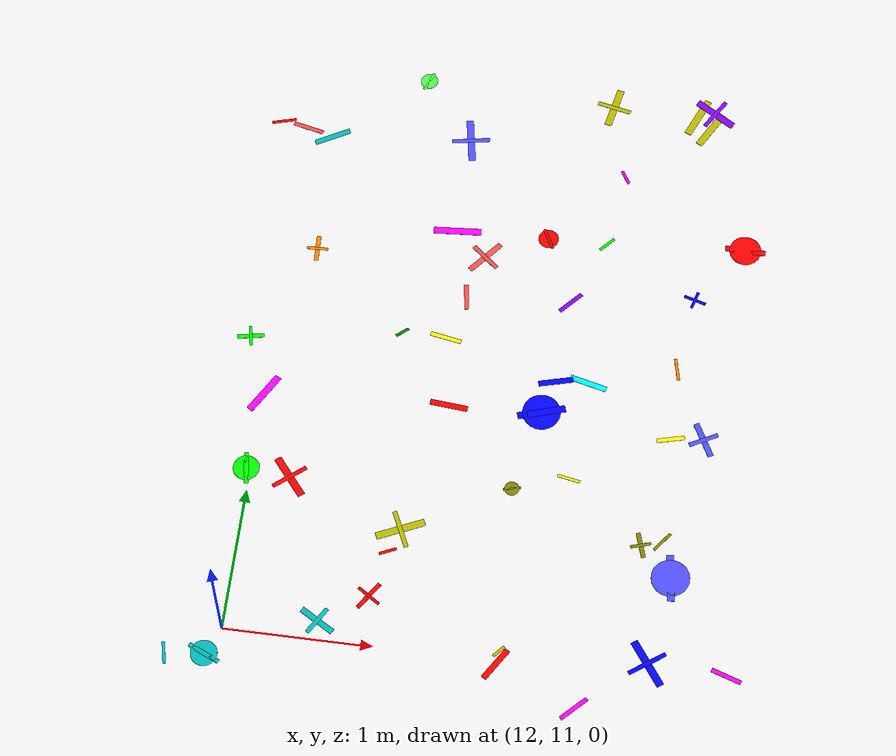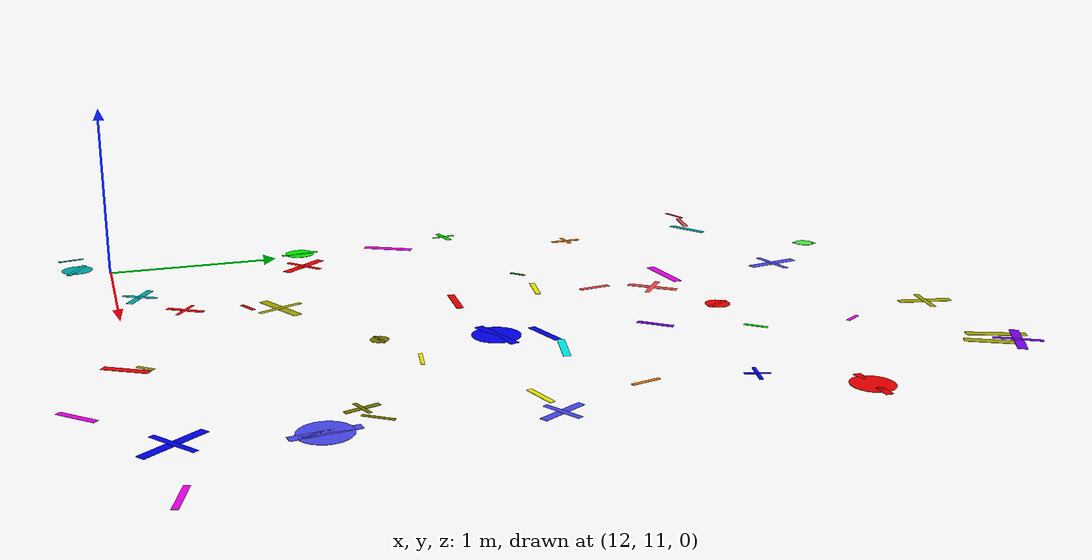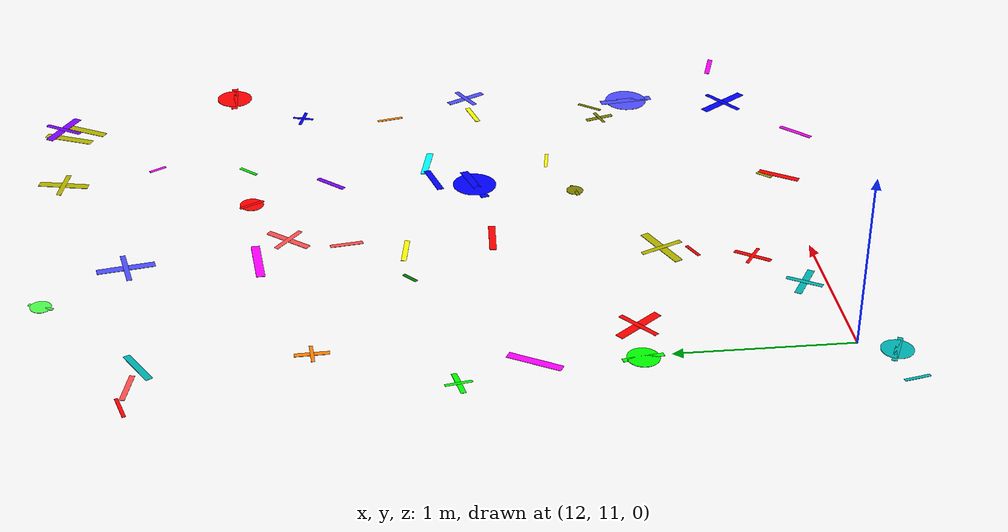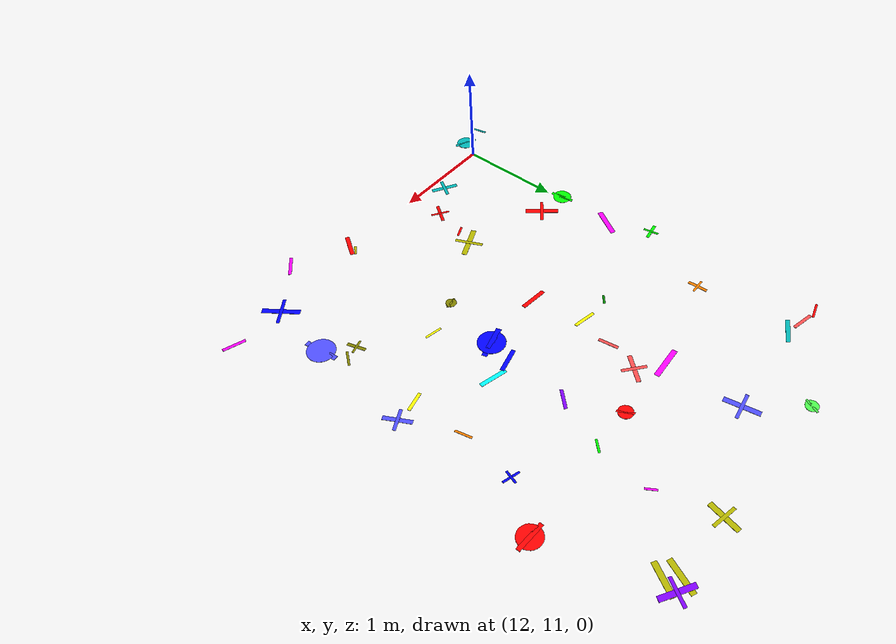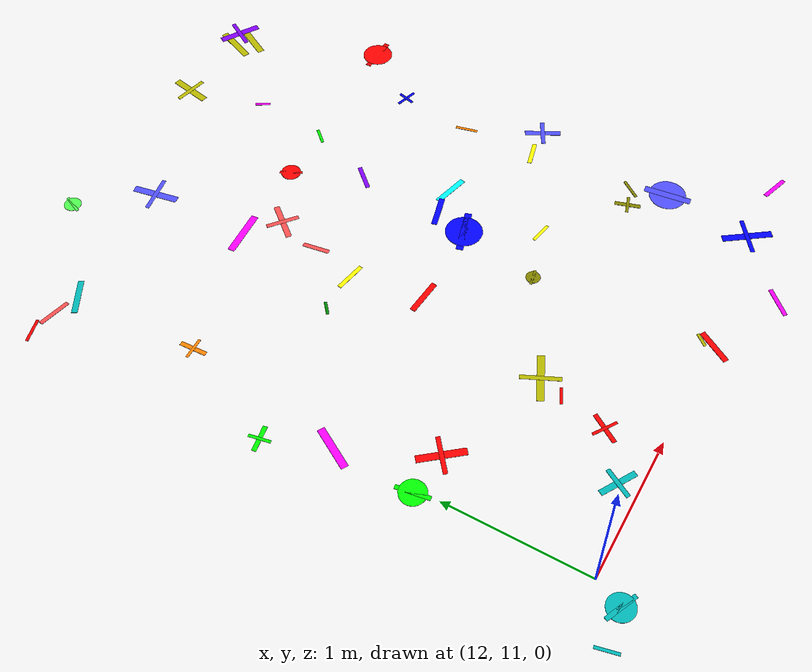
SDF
<sdf version="1.6">
 <world name="default">
  <model name="letter_K_2070">
   <static>true</static>
   <pose>11.65 10.78 0.006 0 0 4.928</pose>
   <link name="link">
    <visual name="visual">
     <geometry><box><size>0.15 0.02 0.002</size></box></geometry>
     <material>
      <ambient>0.0 0.7 0.7 1</ambient>
      <diffuse>0.0 0.7 0.7 1</diffuse>
      <specular>0.1 0.1 0.1 1</specular>
     </material>
    </visual>
   </link>
  </model>
  <model name="letter_G_2072">
   <static>true</static>
   <pose>11.91 10.81 0.010 0 0 2.710</pose>
   <link name="link">
    <visual name="visual">
     <geometry><box><size>0.23 0.03 0.002</size></box></geometry>
     <material>
      <ambient>0.0 0.7 0.7 1</ambient>
      <diffuse>0.0 0.7 0.7 1</diffuse>
      <specular>0.1 0.1 0.1 1</specular>
     </material>
    </visual>
    <visual name="visual2">
     <geometry><cylinder><radius>0.09</radius><length>0.002</length></cylinder></geometry>
     <material><ambient>0.0 0.7 0.7 1</ambient><diffuse>0.0 0.7 0.7 1</diffuse></material>
    </visual>
   </link>
  </model>
  <model name="letter_T_2073">
   <static>true</static>
   <pose>12.27 12.13 0.012 0 0 2.251</pose>
   <link name="link">
    <visual name="visual">
     <geometry><box><size>0.32 0.05 0.002</size></box></geometry>
     <material>
      <ambient>1.0 0.0 0.0 1</ambient>
      <diffuse>1.0 0.0 0.0 1</diffuse>
      <specular>0.1 0.1 0.1 1</specular>
     </material>
    </visual>
    <visual name="visual2">
     <pose>0 0 0.001 0 0 1.57</pose>
     <geometry><box><size>0.26 0.03 0.001</size></box></geometry>
     <material><ambient>1.0 0.0 0.0 1</ambient><diffuse>1.0 0.0 0.0 1</diffuse></material>
    </visual>
   </link>
  </model>
  <model name="letter_G_2075">
   <static>true</static>
   <pose>11.97 12.16 0.011 0 0 1.722</pose>
   <link name="link">
    <visual name="visual">
     <geometry><box><size>0.23 0.03 0.002</size></box></geometry>
     <material>
      <ambient>0.0 1.0 0.0 1</ambient>
      <diffuse>0.0 1.0 0.0 1</diffuse>
      <specular>0.1 0.1 0.1 1</specular>
     </material>
    </visual>
    <visual name="visual2">
     <geometry><cylinder><radius>0.09</radius><length>0.002</length></cylinder></geometry>
     <material><ambient>0.0 1.0 0.0 1</ambient><diffuse>0.0 1.0 0.0 1</diffuse></material>
    </visual>
   </link>
  </model>
  <model name="letter_S_2076">
   <static>true</static>
   <pose>12.00 12.73 0.004 0 0 4.183</pose>
   <link name="link">
    <visual name="visual">
     <geometry><box><size>0.31 0.05 0.002</size></box></geometry>
     <material>
      <ambient>1.0 0.0 1.0 1</ambient>
      <diffuse>1.0 0.0 1.0 1</diffuse>
      <specular>0.1 0.1 0.1 1</specular>
     </material>
    </visual>
   </link>
  </model>
  <model name="letter_H_2077">
   <static>true</static>
   <pose>11.84 13.15 0.008 0 0 3.321</pose>
   <link name="link">
    <visual name="visual">
     <geometry><box><size>0.18 0.03 0.002</size></box></geometry>
     <material>
      <ambient>0.0 1.0 0.0 1</ambient>
      <diffuse>0.0 1.0 0.0 1</diffuse>
      <specular>0.1 0.1 0.1 1</specular>
     </material>
    </visual>
    <visual name="visual2">
     <pose>0 0 0.001 0 0 1.57</pose>
     <geometry><box><size>0.15 0.02 0.001</size></box></geometry>
     <material><ambient>0.0 1.0 0.0 1</ambient><diffuse>0.0 1.0 0.0 1</diffuse></material>
    </visual>
   </link>
  </model>
  <model name="letter_E_2079">
   <static>true</static>
   <pose>12.19 13.89 0.004 0 0 4.754</pose>
   <link name="link">
    <visual name="visual">
     <geometry><box><size>0.19 0.03 0.002</size></box></geometry>
     <material>
      <ambient>1.0 0.5 0.0 1</ambient>
      <diffuse>1.0 0.5 0.0 1</diffuse>
      <specular>0.1 0.1 0.1 1</specular>
     </material>
    </visual>
    <visual name="visual2">
     <pose>0 0 0.001 0 0 1.57</pose>
     <geometry><box><size>0.15 0.02 0.001</size></box></geometry>
     <material><ambient>1.0 0.5 0.0 1</ambient><diffuse>1.0 0.5 0.0 1</diffuse></material>
    </visual>
   </link>
  </model>
  <model name="letter_Z_2080">
   <static>true</static>
   <pose>11.80 14.88 0.010 0 0 3.410</pose>
   <link name="link">
    <visual name="visual">
     <geometry><box><size>0.17 0.02 0.002</size></box></geometry>
     <material>
      <ambient>1.0 0.0 0.0 1</ambient>
      <diffuse>1.0 0.0 0.0 1</diffuse>
      <specular>0.1 0.1 0.1 1</specular>
     </material>
    </visual>
   </link>
  </model>
  <model name="letter_J_2081">
   <static>true</static>
   <pose>11.98 14.85 0.004 0 0 6.061</pose>
   <link name="link">
    <visual name="visual">
     <geometry><box><size>0.22 0.03 0.002</size></box></geometry>
     <material>
      <ambient>1.0 0.3 0.3 1</ambient>
      <diffuse>1.0 0.3 0.3 1</diffuse>
      <specular>0.1 0.1 0.1 1</specular>
     </material>
    </visual>
   </link>
  </model>
  <model name="letter_X_2082">
   <static>true</static>
   <pose>12.16 14.80 0.003 0 0 0.502</pose>
   <link name="link">
    <visual name="visual">
     <geometry><box><size>0.26 0.04 0.002</size></box></geometry>
     <material>
      <ambient>0.0 0.7 0.7 1</ambient>
      <diffuse>0.0 0.7 0.7 1</diffuse>
      <specular>0.1 0.1 0.1 1</specular>
     </material>
    </visual>
   </link>
  </model>
  <model name="letter_T_2151">
   <static>true</static>
   <pose>12.61 11.13 0.010 0 0 2.605</pose>
   <link name="link">
    <visual name="visual">
     <geometry><box><size>0.26 0.04 0.002</size></box></geometry>
     <material>
      <ambient>0.0 0.7 0.7 1</ambient>
      <diffuse>0.0 0.7 0.7 1</diffuse>
      <specular>0.1 0.1 0.1 1</specular>
     </material>
    </visual>
    <visual name="visual2">
     <pose>0 0 0.001 0 0 1.57</pose>
     <geometry><box><size>0.21 0.03 0.001</size></box></geometry>
     <material><ambient>0.0 0.7 0.7 1</ambient><diffuse>0.0 0.7 0.7 1</diffuse></material>
    </visual>
   </link>
  </model>
  <model name="letter_H_2152">
   <static>true</static>
   <pose>12.92 11.35 0.003 0 0 4.126</pose>
   <link name="link">
    <visual name="visual">
     <geometry><box><size>0.22 0.03 0.002</size></box></geometry>
     <material>
      <ambient>1.0 0.0 0.0 1</ambient>
      <diffuse>1.0 0.0 0.0 1</diffuse>
      <specular>0.1 0.1 0.1 1</specular>
     </material>
    </visual>
    <visual name="visual2">
     <pose>0 0 0.001 0 0 1.57</pose>
     <geometry><box><size>0.18 0.02 0.001</size></box></geometry>
     <material><ambient>1.0 0.0 0.0 1</ambient><diffuse>1.0 0.0 0.0 1</diffuse></material>
    </visual>
   </link>
  </model>
  <model name="letter_E_2153">
   <static>true</static>
   <pose>13.06 11.85 0.005 0 0 3.571</pose>
   <link name="link">
    <visual name="visual">
     <geometry><box><size>0.34 0.05 0.002</size></box></geometry>
     <material>
      <ambient>0.7 0.7 0.0 1</ambient>
      <diffuse>0.7 0.7 0.0 1</diffuse>
      <specular>0.1 0.1 0.1 1</specular>
     </material>
    </visual>
    <visual name="visual2">
     <pose>0 0 0.001 0 0 1.57</pose>
     <geometry><box><size>0.27 0.03 0.001</size></box></geometry>
     <material><ambient>0.7 0.7 0.0 1</ambient><diffuse>0.7 0.7 0.0 1</diffuse></material>
    </visual>
   </link>
  </model>
  <model name="letter_S_2154">
   <static>true</static>
   <pose>13.00 11.68 0.009 0 0 3.574</pose>
   <link name="link">
    <visual name="visual">
     <geometry><box><size>0.12 0.02 0.002</size></box></geometry>
     <material>
      <ambient>1.0 0.0 0.0 1</ambient>
      <diffuse>1.0 0.0 0.0 1</diffuse>
      <specular>0.1 0.1 0.1 1</specular>
     </material>
    </visual>
   </link>
  </model>
  <model name="letter_W_2155">
   <static>true</static>
   <pose>13.26 12.80 0.007 0 0 6.194</pose>
   <link name="link">
    <visual name="visual">
     <geometry><box><size>0.26 0.04 0.002</size></box></geometry>
     <material>
      <ambient>1.0 0.0 0.0 1</ambient>
      <diffuse>1.0 0.0 0.0 1</diffuse>
      <specular>0.1 0.1 0.1 1</specular>
     </material>
    </visual>
   </link>
  </model>
  <model name="letter_K_2156">
   <static>true</static>
   <pose>12.87 13.31 0.013 0 0 3.852</pose>
   <link name="link">
    <visual name="visual">
     <geometry><box><size>0.10 0.02 0.002</size></box></geometry>
     <material>
      <ambient>0.0 0.5 0.0 1</ambient>
      <diffuse>0.0 0.5 0.0 1</diffuse>
      <specular>0.1 0.1 0.1 1</specular>
     </material>
    </visual>
   </link>
  </model>
  <model name="letter_V_2157">
   <static>true</static>
   <pose>13.17 13.31 0.008 0 0 6.100</pose>
   <link name="link">
    <visual name="visual">
     <geometry><box><size>0.22 0.03 0.002</size></box></geometry>
     <material>
      <ambient>1.0 1.0 0.0 1</ambient>
      <diffuse>1.0 1.0 0.0 1</diffuse>
      <specular>0.1 0.1 0.1 1</specular>
     </material>
    </visual>
   </link>
  </model>
  <model name="letter_T_2158">
   <static>true</static>
   <pose>13.36 13.97 0.006 0 0 0.874</pose>
   <link name="link">
    <visual name="visual">
     <geometry><box><size>0.29 0.04 0.002</size></box></geometry>
     <material>
      <ambient>1.0 0.3 0.3 1</ambient>
      <diffuse>1.0 0.3 0.3 1</diffuse>
      <specular>0.1 0.1 0.1 1</specular>
     </material>
    </visual>
    <visual name="visual2">
     <pose>0 0 0.001 0 0 1.57</pose>
     <geometry><box><size>0.23 0.03 0.001</size></box></geometry>
     <material><ambient>1.0 0.3 0.3 1</ambient><diffuse>1.0 0.3 0.3 1</diffuse></material>
    </visual>
   </link>
  </model>
  <model name="letter_M_2159">
   <static>true</static>
   <pose>13.14 14.15 0.008 0 0 3.214</pose>
   <link name="link">
    <visual name="visual">
     <geometry><box><size>0.33 0.05 0.002</size></box></geometry>
     <material>
      <ambient>1.0 0.0 1.0 1</ambient>
      <diffuse>1.0 0.0 1.0 1</diffuse>
      <specular>0.1 0.1 0.1 1</specular>
     </material>
    </visual>
   </link>
  </model>
  <model name="letter_R_2160">
   <static>true</static>
   <pose>13.27 13.64 0.010 0 0 4.855</pose>
   <link name="link">
    <visual name="visual">
     <geometry><box><size>0.19 0.03 0.002</size></box></geometry>
     <material>
      <ambient>1.0 0.3 0.3 1</ambient>
      <diffuse>1.0 0.3 0.3 1</diffuse>
      <specular>0.1 0.1 0.1 1</specular>
     </material>
    </visual>
   </link>
  </model>
  <model name="letter_I_2161">
   <static>true</static>
   <pose>13.14 14.89 0.010 0 0 4.885</pose>
   <link name="link">
    <visual name="visual">
     <geometry><box><size>0.33 0.05 0.002</size></box></geometry>
     <material>
      <ambient>0.3 0.3 1.0 1</ambient>
      <diffuse>0.3 0.3 1.0 1</diffuse>
      <specular>0.1 0.1 0.1 1</specular>
     </material>
    </visual>
    <visual name="visual2">
     <pose>0 0 0.001 0 0 1.57</pose>
     <geometry><box><size>0.27 0.03 0.001</size></box></geometry>
     <material><ambient>0.3 0.3 1.0 1</ambient><diffuse>0.3 0.3 1.0 1</diffuse></material>
    </visual>
   </link>
  </model>
  <model name="letter_Q_2162">
   <static>true</static>
   <pose>12.78 15.34 0.013 0 0 4.293</pose>
   <link name="link">
    <visual name="visual">
     <geometry><box><size>0.15 0.02 0.002</size></box></geometry>
     <material>
      <ambient>0.3 1.0 0.3 1</ambient>
      <diffuse>0.3 1.0 0.3 1</diffuse>
      <specular>0.1 0.1 0.1 1</specular>
     </material>
    </visual>
    <visual name="visual2">
     <geometry><cylinder><radius>0.06</radius><length>0.002</length></cylinder></geometry>
     <material><ambient>0.3 1.0 0.3 1</ambient><diffuse>0.3 1.0 0.3 1</diffuse></material>
    </visual>
   </link>
  </model>
  <model name="letter_Z_2227">
   <static>true</static>
   <pose>14.35 10.74 0.004 0 0 0.787</pose>
   <link name="link">
    <visual name="visual">
     <geometry><box><size>0.22 0.03 0.002</size></box></geometry>
     <material>
      <ambient>1.0 0.0 1.0 1</ambient>
      <diffuse>1.0 0.0 1.0 1</diffuse>
      <specular>0.1 0.1 0.1 1</specular>
     </material>
    </visual>
   </link>
  </model>
  <model name="letter_P_2228">
   <static>true</static>
   <pose>13.82 11.07 0.009 0 0 0.850</pose>
   <link name="link">
    <visual name="visual">
     <geometry><box><size>0.10 0.02 0.002</size></box></geometry>
     <material>
      <ambient>0.7 0.7 0.0 1</ambient>
      <diffuse>0.7 0.7 0.0 1</diffuse>
      <specular>0.1 0.1 0.1 1</specular>
     </material>
    </visual>
   </link>
  </model>
  <model name="letter_P_2229">
   <static>true</static>
   <pose>13.81 10.98 0.006 0 0 1.010</pose>
   <link name="link">
    <visual name="visual">
     <geometry><box><size>0.25 0.04 0.002</size></box></geometry>
     <material>
      <ambient>1.0 0.0 0.0 1</ambient>
      <diffuse>1.0 0.0 0.0 1</diffuse>
      <specular>0.1 0.1 0.1 1</specular>
     </material>
    </visual>
   </link>
  </model>
  <model name="letter_C_2230">
   <static>true</static>
   <pose>13.76 12.24 0.005 0 0 3.343</pose>
   <link name="link">
    <visual name="visual">
     <geometry><box><size>0.12 0.02 0.002</size></box></geometry>
     <material>
      <ambient>0.5 0.5 0.0 1</ambient>
      <diffuse>0.5 0.5 0.0 1</diffuse>
      <specular>0.1 0.1 0.1 1</specular>
     </material>
    </visual>
    <visual name="visual2">
     <geometry><cylinder><radius>0.05</radius><length>0.002</length></cylinder></geometry>
     <material><ambient>0.5 0.5 0.0 1</ambient><diffuse>0.5 0.5 0.0 1</diffuse></material>
    </visual>
   </link>
  </model>
  <model name="letter_X_2231">
   <static>true</static>
   <pose>14.13 12.36 0.011 0 0 6.097</pose>
   <link name="link">
    <visual name="visual">
     <geometry><box><size>0.16 0.02 0.002</size></box></geometry>
     <material>
      <ambient>1.0 1.0 0.0 1</ambient>
      <diffuse>1.0 1.0 0.0 1</diffuse>
      <specular>0.1 0.1 0.1 1</specular>
     </material>
    </visual>
   </link>
  </model>
  <model name="letter_P_2232">
   <static>true</static>
   <pose>14.18 13.09 0.003 0 0 2.898</pose>
   <link name="link">
    <visual name="visual">
     <geometry><box><size>0.26 0.04 0.002</size></box></geometry>
     <material>
      <ambient>0.0 1.0 1.0 1</ambient>
      <diffuse>0.0 1.0 1.0 1</diffuse>
      <specular>0.1 0.1 0.1 1</specular>
     </material>
    </visual>
   </link>
  </model>
  <model name="letter_O_2233">
   <static>true</static>
   <pose>13.89 12.83 0.006 0 0 3.432</pose>
   <link name="link">
    <visual name="visual">
     <geometry><box><size>0.33 0.05 0.002</size></box></geometry>
     <material>
      <ambient>0.0 0.0 1.0 1</ambient>
      <diffuse>0.0 0.0 1.0 1</diffuse>
      <specular>0.1 0.1 0.1 1</specular>
     </material>
    </visual>
    <visual name="visual2">
     <geometry><cylinder><radius>0.13</radius><length>0.002</length></cylinder></geometry>
     <material><ambient>0.0 0.0 1.0 1</ambient><diffuse>0.0 0.0 1.0 1</diffuse></material>
    </visual>
   </link>
  </model>
  <model name="letter_B_2234">
   <static>true</static>
   <pose>13.96 13.07 0.011 0 0 0.256</pose>
   <link name="link">
    <visual name="visual">
     <geometry><box><size>0.24 0.04 0.002</size></box></geometry>
     <material>
      <ambient>0.0 0.0 1.0 1</ambient>
      <diffuse>0.0 0.0 1.0 1</diffuse>
      <specular>0.1 0.1 0.1 1</specular>
     </material>
    </visual>
   </link>
  </model>
  <model name="letter_U_2235">
   <static>true</static>
   <pose>13.99 13.69 0.005 0 0 0.828</pose>
   <link name="link">
    <visual name="visual">
     <geometry><box><size>0.20 0.03 0.002</size></box></geometry>
     <material>
      <ambient>0.5 0.0 1.0 1</ambient>
      <diffuse>0.5 0.0 1.0 1</diffuse>
      <specular>0.1 0.1 0.1 1</specular>
     </material>
    </visual>
   </link>
  </model>
  <model name="letter_D_2236">
   <static>true</static>
   <pose>14.19 14.18 0.005 0 0 0.820</pose>
   <link name="link">
    <visual name="visual">
     <geometry><box><size>0.13 0.02 0.002</size></box></geometry>
     <material>
      <ambient>0.0 1.0 0.0 1</ambient>
      <diffuse>0.0 1.0 0.0 1</diffuse>
      <specular>0.1 0.1 0.1 1</specular>
     </material>
    </visual>
   </link>
  </model>
  <model name="letter_G_2237">
   <static>true</static>
   <pose>13.78 14.17 0.008 0 0 5.196</pose>
   <link name="link">
    <visual name="visual">
     <geometry><box><size>0.16 0.02 0.002</size></box></geometry>
     <material>
      <ambient>1.0 0.0 0.0 1</ambient>
      <diffuse>1.0 0.0 0.0 1</diffuse>
      <specular>0.1 0.1 0.1 1</specular>
     </material>
    </visual>
    <visual name="visual2">
     <geometry><cylinder><radius>0.07</radius><length>0.002</length></cylinder></geometry>
     <material><ambient>1.0 0.0 0.0 1</ambient><diffuse>1.0 0.0 0.0 1</diffuse></material>
    </visual>
   </link>
  </model>
  <model name="letter_Y_2238">
   <static>true</static>
   <pose>14.26 14.73 0.012 0 0 5.254</pose>
   <link name="link">
    <visual name="visual">
     <geometry><box><size>0.11 0.02 0.002</size></box></geometry>
     <material>
      <ambient>1.0 0.0 1.0 1</ambient>
      <diffuse>1.0 0.0 1.0 1</diffuse>
      <specular>0.1 0.1 0.1 1</specular>
     </material>
    </visual>
   </link>
  </model>
  <model name="letter_I_2239">
   <static>true</static>
   <pose>14.12 15.29 0.013 0 0 4.503</pose>
   <link name="link">
    <visual name="visual">
     <geometry><box><size>0.30 0.05 0.002</size></box></geometry>
     <material>
      <ambient>0.7 0.7 0.0 1</ambient>
      <diffuse>0.7 0.7 0.0 1</diffuse>
      <specular>0.1 0.1 0.1 1</specular>
     </material>
    </visual>
    <visual name="visual2">
     <pose>0 0 0.001 0 0 1.57</pose>
     <geometry><box><size>0.24 0.03 0.001</size></box></geometry>
     <material><ambient>0.7 0.7 0.0 1</ambient><diffuse>0.7 0.7 0.0 1</diffuse></material>
    </visual>
   </link>
  </model>
  <model name="letter_A_2308">
   <static>true</static>
   <pose>14.79 11.11 0.007 0 0 2.193</pose>
   <link name="link">
    <visual name="visual">
     <geometry><box><size>0.35 0.05 0.002</size></box></geometry>
     <material>
      <ambient>0.0 0.0 1.0 1</ambient>
      <diffuse>0.0 0.0 1.0 1</diffuse>
      <specular>0.1 0.1 0.1 1</specular>
     </material>
    </visual>
    <visual name="visual2">
     <pose>0 0 0.001 0 0 1.57</pose>
     <geometry><box><size>0.28 0.03 0.001</size></box></geometry>
     <material><ambient>0.0 0.0 1.0 1</ambient><diffuse>0.0 0.0 1.0 1</diffuse></material>
    </visual>
   </link>
  </model>
  <model name="letter_X_2309">
   <static>true</static>
   <pose>15.31 11.09 0.005 0 0 2.821</pose>
   <link name="link">
    <visual name="visual">
     <geometry><box><size>0.21 0.03 0.002</size></box></geometry>
     <material>
      <ambient>1.0 0.0 1.0 1</ambient>
      <diffuse>1.0 0.0 1.0 1</diffuse>
      <specular>0.1 0.1 0.1 1</specular>
     </material>
    </visual>
   </link>
  </model>
  <model name="letter_O_2310">
   <static>true</static>
   <pose>14.88 11.73 0.007 0 0 4.828</pose>
   <link name="link">
    <visual name="visual">
     <geometry><box><size>0.33 0.05 0.002</size></box></geometry>
     <material>
      <ambient>0.3 0.3 1.0 1</ambient>
      <diffuse>0.3 0.3 1.0 1</diffuse>
      <specular>0.1 0.1 0.1 1</specular>
     </material>
    </visual>
    <visual name="visual2">
     <geometry><cylinder><radius>0.13</radius><length>0.002</length></cylinder></geometry>
     <material><ambient>0.3 0.3 1.0 1</ambient><diffuse>0.3 0.3 1.0 1</diffuse></material>
    </visual>
   </link>
  </model>
  <model name="letter_E_2311">
   <static>true</static>
   <pose>14.66 11.94 0.007 0 0 5.013</pose>
   <link name="link">
    <visual name="visual">
     <geometry><box><size>0.18 0.03 0.002</size></box></geometry>
     <material>
      <ambient>0.5 0.5 0.0 1</ambient>
      <diffuse>0.5 0.5 0.0 1</diffuse>
      <specular>0.1 0.1 0.1 1</specular>
     </material>
    </visual>
    <visual name="visual2">
     <pose>0 0 0.001 0 0 1.57</pose>
     <geometry><box><size>0.14 0.02 0.001</size></box></geometry>
     <material><ambient>0.5 0.5 0.0 1</ambient><diffuse>0.5 0.5 0.0 1</diffuse></material>
    </visual>
   </link>
  </model>
  <model name="letter_J_2312">
   <static>true</static>
   <pose>14.80 11.98 0.013 0 0 0.921</pose>
   <link name="link">
    <visual name="visual">
     <geometry><box><size>0.16 0.02 0.002</size></box></geometry>
     <material>
      <ambient>0.5 0.5 0.0 1</ambient>
      <diffuse>0.5 0.5 0.0 1</diffuse>
      <specular>0.1 0.1 0.1 1</specular>
     </material>
    </visual>
   </link>
  </model>
  <model name="letter_B_2313">
   <static>true</static>
   <pose>14.78 12.74 0.009 0 0 0.246</pose>
   <link name="link">
    <visual name="visual">
     <geometry><box><size>0.19 0.03 0.002</size></box></geometry>
     <material>
      <ambient>1.0 1.0 0.0 1</ambient>
      <diffuse>1.0 1.0 0.0 1</diffuse>
      <specular>0.1 0.1 0.1 1</specular>
     </material>
    </visual>
   </link>
  </model>
  <model name="letter_U_2314">
   <static>true</static>
   <pose>14.77 13.27 0.009 0 0 4.930</pose>
   <link name="link">
    <visual name="visual">
     <geometry><box><size>0.16 0.02 0.002</size></box></geometry>
     <material>
      <ambient>1.0 0.5 0.0 1</ambient>
      <diffuse>1.0 0.5 0.0 1</diffuse>
      <specular>0.1 0.1 0.1 1</specular>
     </material>
    </visual>
   </link>
  </model>
  <model name="letter_T_2315">
   <static>true</static>
   <pose>15.00 12.76 0.013 0 0 2.058</pose>
   <link name="link">
    <visual name="visual">
     <geometry><box><size>0.26 0.04 0.002</size></box></geometry>
     <material>
      <ambient>0.3 0.3 1.0 1</ambient>
      <diffuse>0.3 0.3 1.0 1</diffuse>
      <specular>0.1 0.1 0.1 1</specular>
     </material>
    </visual>
    <visual name="visual2">
     <pose>0 0 0.001 0 0 1.57</pose>
     <geometry><box><size>0.21 0.03 0.001</size></box></geometry>
     <material><ambient>0.3 0.3 1.0 1</ambient><diffuse>0.3 0.3 1.0 1</diffuse></material>
    </visual>
   </link>
  </model>
  <model name="letter_C_2316">
   <static>true</static>
   <pose>15.15 14.25 0.012 0 0 6.256</pose>
   <link name="link">
    <visual name="visual">
     <geometry><box><size>0.28 0.04 0.002</size></box></geometry>
     <material>
      <ambient>1.0 0.0 0.0 1</ambient>
      <diffuse>1.0 0.0 0.0 1</diffuse>
      <specular>0.1 0.1 0.1 1</specular>
     </material>
    </visual>
    <visual name="visual2">
     <geometry><cylinder><radius>0.11</radius><length>0.002</length></cylinder></geometry>
     <material><ambient>1.0 0.0 0.0 1</ambient><diffuse>1.0 0.0 0.0 1</diffuse></material>
    </visual>
   </link>
  </model>
  <model name="letter_T_2317">
   <static>true</static>
   <pose>14.84 13.82 0.007 0 0 2.859</pose>
   <link name="link">
    <visual name="visual">
     <geometry><box><size>0.16 0.02 0.002</size></box></geometry>
     <material>
      <ambient>0.0 0.0 1.0 1</ambient>
      <diffuse>0.0 0.0 1.0 1</diffuse>
      <specular>0.1 0.1 0.1 1</specular>
     </material>
    </visual>
    <visual name="visual2">
     <pose>0 0 0.001 0 0 1.57</pose>
     <geometry><box><size>0.13 0.02 0.001</size></box></geometry>
     <material><ambient>0.0 0.0 1.0 1</ambient><diffuse>0.0 0.0 1.0 1</diffuse></material>
    </visual>
   </link>
  </model>
  <model name="letter_S_2318">
   <static>true</static>
   <pose>14.72 15.29 0.006 0 0 4.311</pose>
   <link name="link">
    <visual name="visual">
     <geometry><box><size>0.31 0.05 0.002</size></box></geometry>
     <material>
      <ambient>0.7 0.7 0.0 1</ambient>
      <diffuse>0.7 0.7 0.0 1</diffuse>
      <specular>0.1 0.1 0.1 1</specular>
     </material>
    </visual>
   </link>
  </model>
  <model name="letter_K_2319">
   <static>true</static>
   <pose>14.82 15.20 0.008 0 0 4.199</pose>
   <link name="link">
    <visual name="visual">
     <geometry><box><size>0.30 0.05 0.002</size></box></geometry>
     <material>
      <ambient>0.7 0.7 0.0 1</ambient>
      <diffuse>0.7 0.7 0.0 1</diffuse>
      <specular>0.1 0.1 0.1 1</specular>
     </material>
    </visual>
   </link>
  </model>
  <model name="letter_I_2320">
   <static>true</static>
   <pose>14.84 15.33 0.011 0 0 2.592</pose>
   <link name="link">
    <visual name="visual">
     <geometry><box><size>0.31 0.05 0.002</size></box></geometry>
     <material>
      <ambient>0.5 0.0 1.0 1</ambient>
      <diffuse>0.5 0.0 1.0 1</diffuse>
      <specular>0.1 0.1 0.1 1</specular>
     </material>
    </visual>
    <visual name="visual2">
     <pose>0 0 0.001 0 0 1.57</pose>
     <geometry><box><size>0.25 0.03 0.001</size></box></geometry>
     <material><ambient>0.5 0.0 1.0 1</ambient><diffuse>0.5 0.0 1.0 1</diffuse></material>
    </visual>
   </link>
  </model>
 </world>
</sdf>
